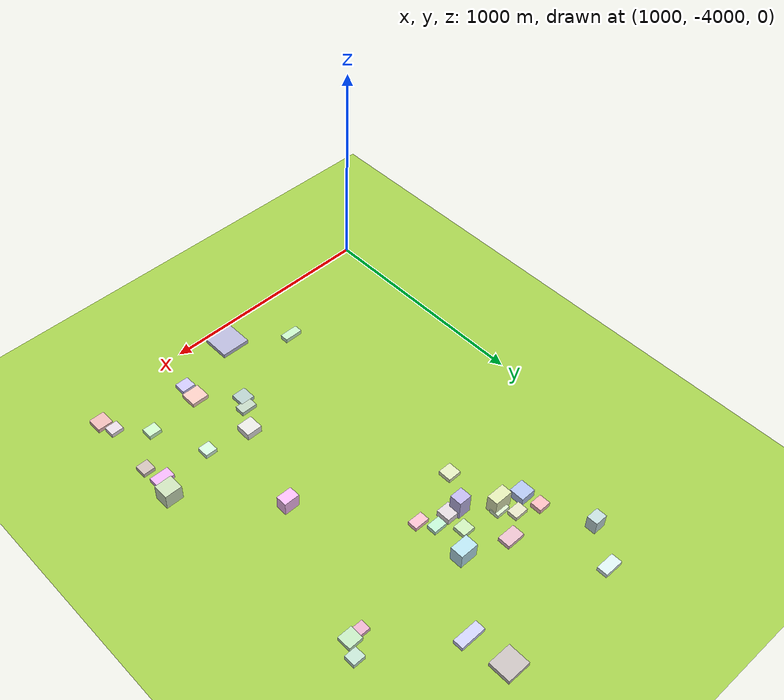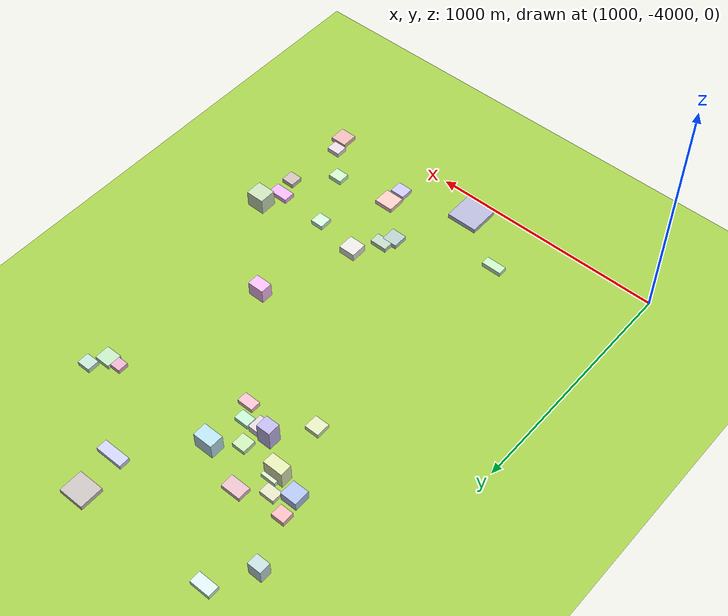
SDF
<sdf version="1.9">
 <world name="city_map">
  <model name="ground_plane">
   <static>1</static>
   <link name="link">
    <collision name="collision">
     <geometry><plane><normal>0 0 1</normal><size>11000 11000</size></plane></geometry>
    </collision>
    <visual name="visual">
     <geometry><plane><normal>0 0 1</normal><size>11000 11000</size></plane></geometry>
     <material>
      <ambient>0.551 0.712 0.210 1</ambient>
      <diffuse>0.651 0.812 0.310 1</diffuse>
      <specular>0.1 0.1 0.05 1</specular>
     </material>
    </visual>
   </link>
  </model>
  <model name="building_984583574">
   <static>1</static>
   <pose>1801.59662404086 -3913.0857329520377 10.0 0 0 0</pose>
   <link name="link">
    <collision name="collision">
     <geometry><box><size>133.23845798524687 126.58439999967186 20</size></box></geometry>
    </collision>
    <visual name="visual">
     <cast_shadows>false</cast_shadows>
     <geometry><box><size>133.23845798524687 126.58439999967186 20</size></box></geometry>
     <material>
      <ambient>0.619 0.622 0.746 1</ambient>
      <diffuse>0.719 0.722 0.846 1</diffuse>
      <specular>0.216 0.217 0.254 1</specular>
      <emissive>0.01 0.01 0.01 1</emissive>
     </material>
    </visual>
   </link>
  </model>
  <model name="building_757155120">
   <static>1</static>
   <pose>2042.8824752467478 -2015.1762467787198 10.0 0 0 0</pose>
   <link name="link">
    <collision name="collision">
     <geometry><box><size>108.82439999955551 98.61750191601611 20</size></box></geometry>
    </collision>
    <visual name="visual">
     <cast_shadows>false</cast_shadows>
     <geometry><box><size>108.82439999955551 98.61750191601611 20</size></box></geometry>
     <material>
      <ambient>0.684 0.657 0.651 1</ambient>
      <diffuse>0.784 0.757 0.751 1</diffuse>
      <specular>0.235 0.227 0.225 1</specular>
      <emissive>0.01 0.01 0.01 1</emissive>
     </material>
    </visual>
   </link>
  </model>
  <model name="building_905388604">
   <static>1</static>
   <pose>2101.1799785935173 -3754.8096324466137 10.0 0 0 0</pose>
   <link name="link">
    <collision name="collision">
     <geometry><box><size>80.5637999997657 74.46120979869195 20</size></box></geometry>
    </collision>
    <visual name="visual">
     <cast_shadows>false</cast_shadows>
     <geometry><box><size>80.5637999997657 74.46120979869195 20</size></box></geometry>
     <material>
      <ambient>0.862 0.701 0.666 1</ambient>
      <diffuse>0.962 0.801 0.766 1</diffuse>
      <specular>0.288 0.240 0.230 1</specular>
      <emissive>0.01 0.01 0.01 1</emissive>
     </material>
    </visual>
   </link>
  </model>
  <model name="building_14091284">
   <static>1</static>
   <pose>2493.5834079759748 -3413.2316545847716 36.39568291889552 0 0 0</pose>
   <link name="link">
    <collision name="collision">
     <geometry><box><size>79.93109999947023 71.48210255128315 72.79136583779103</size></box></geometry>
    </collision>
    <visual name="visual">
     <cast_shadows>false</cast_shadows>
     <geometry><box><size>79.93109999947023 71.48210255128315 72.79136583779103</size></box></geometry>
     <material>
      <ambient>0.700 0.773 0.635 1</ambient>
      <diffuse>0.800 0.873 0.735 1</diffuse>
      <specular>0.240 0.262 0.220 1</specular>
      <emissive>0.01 0.01 0.01 1</emissive>
     </material>
    </visual>
   </link>
  </model>
  <model name="building_813416414">
   <static>1</static>
   <pose>2066.2389783622407 -2188.2709370958605 10.0 0 0 0</pose>
   <link name="link">
    <collision name="collision">
     <geometry><box><size>118.58908814130459 45.45449999960027 20</size></box></geometry>
    </collision>
    <visual name="visual">
     <cast_shadows>false</cast_shadows>
     <geometry><box><size>118.58908814130459 45.45449999960027 20</size></box></geometry>
     <material>
      <ambient>0.711 0.721 0.900 1</ambient>
      <diffuse>0.811 0.821 1.000 1</diffuse>
      <specular>0.243 0.246 0.300 1</specular>
      <emissive>0.01 0.01 0.01 1</emissive>
     </material>
    </visual>
   </link>
  </model>
  <model name="building_610042011">
   <static>1</static>
   <pose>1835.0709310361392 -2438.050033490344 36.14320716174114 0 0 0</pose>
   <link name="link">
    <collision name="collision">
     <geometry><box><size>85.11480000010607 59.25029610578512 72.28641432348228</size></box></geometry>
    </collision>
    <visual name="visual">
     <cast_shadows>false</cast_shadows>
     <geometry><box><size>85.11480000010607 59.25029610578512 72.28641432348228</size></box></geometry>
     <material>
      <ambient>0.623 0.787 0.835 1</ambient>
      <diffuse>0.723 0.887 0.935 1</diffuse>
      <specular>0.217 0.266 0.281 1</specular>
      <emissive>0.01 0.01 0.01 1</emissive>
     </material>
    </visual>
   </link>
  </model>
  <model name="building_415144298">
   <static>1</static>
   <pose>2045.4831247615432 -3460.0418100325505 16.895613754972455 0 0 0</pose>
   <link name="link">
    <collision name="collision">
     <geometry><box><size>71.92196081005667 69.86340000012348 33.79122750994491</size></box></geometry>
    </collision>
    <visual name="visual">
     <cast_shadows>false</cast_shadows>
     <geometry><box><size>71.92196081005667 69.86340000012348 33.79122750994491</size></box></geometry>
     <material>
      <ambient>0.803 0.799 0.787 1</ambient>
      <diffuse>0.903 0.899 0.887 1</diffuse>
      <specular>0.271 0.270 0.266 1</specular>
      <emissive>0.01 0.01 0.01 1</emissive>
     </material>
    </visual>
   </link>
  </model>
  <model name="building_810631705">
   <static>1</static>
   <pose>1640.5882244002505 -2369.477485334747 10.0 0 0 0</pose>
   <link name="link">
    <collision name="collision">
     <geometry><box><size>85.22500455852719 56.06609999978218 20</size></box></geometry>
    </collision>
    <visual name="visual">
     <cast_shadows>false</cast_shadows>
     <geometry><box><size>85.22500455852719 56.06609999978218 20</size></box></geometry>
     <material>
      <ambient>0.808 0.649 0.700 1</ambient>
      <diffuse>0.908 0.749 0.800 1</diffuse>
      <specular>0.272 0.225 0.240 1</specular>
      <emissive>0.01 0.01 0.01 1</emissive>
     </material>
    </visual>
   </link>
  </model>
  <model name="building_251621896">
   <static>1</static>
   <pose>2479.420712799257 -3906.830343730254 10.0 0 0 0</pose>
   <link name="link">
    <collision name="collision">
     <geometry><box><size>69.72502187033729 68.27609999971429 20</size></box></geometry>
    </collision>
    <visual name="visual">
     <cast_shadows>false</cast_shadows>
     <geometry><box><size>69.72502187033729 68.27609999971429 20</size></box></geometry>
     <material>
      <ambient>0.822 0.628 0.620 1</ambient>
      <diffuse>0.922 0.728 0.720 1</diffuse>
      <specular>0.277 0.218 0.216 1</specular>
      <emissive>0.01 0.01 0.01 1</emissive>
     </material>
    </visual>
   </link>
  </model>
  <model name="building_79015618">
   <static>1</static>
   <pose>1459.5037887878752 -2476.6691407266485 20.242902835362955 0 0 0</pose>
   <link name="link">
    <collision name="collision">
     <geometry><box><size>70.47390000015952 67.54220421326987 40.48580567072591</size></box></geometry>
    </collision>
    <visual name="visual">
     <cast_shadows>false</cast_shadows>
     <geometry><box><size>70.47390000015952 67.54220421326987 40.48580567072591</size></box></geometry>
     <material>
      <ambient>0.601 0.669 0.833 1</ambient>
      <diffuse>0.701 0.769 0.933 1</diffuse>
      <specular>0.210 0.231 0.280 1</specular>
      <emissive>0.01 0.01 0.01 1</emissive>
     </material>
    </visual>
   </link>
  </model>
  <model name="building_52306639">
   <static>1</static>
   <pose>2391.3393219125833 -2469.098834006695 10.0 0 0 0</pose>
   <link name="link">
    <collision name="collision">
     <geometry><box><size>67.16610000015066 63.649666229809 20</size></box></geometry>
    </collision>
    <visual name="visual">
     <cast_shadows>false</cast_shadows>
     <geometry><box><size>67.16610000015066 63.649666229809 20</size></box></geometry>
     <material>
      <ambient>0.667 0.810 0.661 1</ambient>
      <diffuse>0.767 0.910 0.761 1</diffuse>
      <specular>0.230 0.273 0.228 1</specular>
      <emissive>0.01 0.01 0.01 1</emissive>
     </material>
    </visual>
   </link>
  </model>
  <model name="building_217709129">
   <static>1</static>
   <pose>2463.4012541892116 -3502.737484863511 10.5 0 0 0</pose>
   <link name="link">
    <collision name="collision">
     <geometry><box><size>85.69200000054167 49.73967263069348 21.0</size></box></geometry>
    </collision>
    <visual name="visual">
     <cast_shadows>false</cast_shadows>
     <geometry><box><size>85.69200000054167 49.73967263069348 21.0</size></box></geometry>
     <material>
      <ambient>0.842 0.614 0.863 1</ambient>
      <diffuse>0.942 0.714 0.963 1</diffuse>
      <specular>0.282 0.214 0.289 1</specular>
      <emissive>0.01 0.01 0.01 1</emissive>
     </material>
    </visual>
   </link>
  </model>
  <model name="building_737040306">
   <static>1</static>
   <pose>1565.0717301397547 -2505.5396137041835 40.491242694363905 0 0 0</pose>
   <link name="link">
    <collision name="collision">
     <geometry><box><size>85.15297994596878 49.761299999453 80.98248538872781</size></box></geometry>
    </collision>
    <visual name="visual">
     <cast_shadows>false</cast_shadows>
     <geometry><box><size>85.15297994596878 49.761299999453 80.98248538872781</size></box></geometry>
     <material>
      <ambient>0.785 0.816 0.612 1</ambient>
      <diffuse>0.885 0.916 0.712 1</diffuse>
      <specular>0.266 0.275 0.213 1</specular>
      <emissive>0.01 0.01 0.01 1</emissive>
     </material>
    </visual>
   </link>
  </model>
  <model name="building_800070766">
   <static>1</static>
   <pose>1461.766735894239 -2032.4796136993255 10.0 0 0 0</pose>
   <link name="link">
    <collision name="collision">
     <geometry><box><size>87.71914227554383 48.0852000003722 20</size></box></geometry>
    </collision>
    <visual name="visual">
     <cast_shadows>false</cast_shadows>
     <geometry><box><size>87.71914227554383 48.0852000003722 20</size></box></geometry>
     <material>
      <ambient>0.763 0.839 0.842 1</ambient>
      <diffuse>0.863 0.939 0.942 1</diffuse>
      <specular>0.259 0.282 0.282 1</specular>
      <emissive>0.01 0.01 0.01 1</emissive>
     </material>
    </visual>
   </link>
  </model>
  <model name="building_109696890">
   <static>1</static>
   <pose>1955.0863617374955 -3612.4122485605008 10.0 0 0 0</pose>
   <link name="link">
    <collision name="collision">
     <geometry><box><size>64.69080000040606 64.38104961609996 20</size></box></geometry>
    </collision>
    <visual name="visual">
     <cast_shadows>false</cast_shadows>
     <geometry><box><size>64.69080000040606 64.38104961609996 20</size></box></geometry>
     <material>
      <ambient>0.620 0.710 0.693 1</ambient>
      <diffuse>0.720 0.810 0.793 1</diffuse>
      <specular>0.216 0.243 0.238 1</specular>
      <emissive>0.01 0.01 0.01 1</emissive>
     </material>
    </visual>
   </link>
  </model>
  <model name="building_515685885">
   <static>1</static>
   <pose>1742.0767276350393 -2607.8509080981535 15.54974932581131 0 0 0</pose>
   <link name="link">
    <collision name="collision">
     <geometry><box><size>63.28664748943462 62.57070000008014 31.09949865162262</size></box></geometry>
    </collision>
    <visual name="visual">
     <cast_shadows>false</cast_shadows>
     <geometry><box><size>63.28664748943462 62.57070000008014 31.09949865162262</size></box></geometry>
     <material>
      <ambient>0.783 0.747 0.764 1</ambient>
      <diffuse>0.883 0.847 0.864 1</diffuse>
      <specular>0.265 0.254 0.259 1</specular>
      <emissive>0.01 0.01 0.01 1</emissive>
     </material>
    </visual>
   </link>
  </model>
  <model name="building_43096482">
   <static>1</static>
   <pose>1593.9989167806223 -2742.9024415031295 10.0 0 0 0</pose>
   <link name="link">
    <collision name="collision">
     <geometry><box><size>61.97129999938511 59.56480256903018 20</size></box></geometry>
    </collision>
    <visual name="visual">
     <cast_shadows>false</cast_shadows>
     <geometry><box><size>61.97129999938511 59.56480256903018 20</size></box></geometry>
     <material>
      <ambient>0.783 0.819 0.650 1</ambient>
      <diffuse>0.883 0.919 0.750 1</diffuse>
      <specular>0.265 0.276 0.225 1</specular>
      <emissive>0.01 0.01 0.01 1</emissive>
     </material>
    </visual>
   </link>
  </model>
  <model name="building_321156671">
   <static>1</static>
   <pose>2173.332227625995 -3065.5977037093962 32.50847927852427 0 0 0</pose>
   <link name="link">
    <collision name="collision">
     <geometry><box><size>71.51763666642672 50.9933999996548 65.01695855704854</size></box></geometry>
    </collision>
    <visual name="visual">
     <cast_shadows>false</cast_shadows>
     <geometry><box><size>71.51763666642672 50.9933999996548 65.01695855704854</size></box></geometry>
     <material>
      <ambient>0.881 0.643 0.861 1</ambient>
      <diffuse>0.981 0.743 0.961 1</diffuse>
      <specular>0.294 0.223 0.288 1</specular>
      <emissive>0.01 0.01 0.01 1</emissive>
     </material>
    </visual>
   </link>
  </model>
  <model name="building_602035633">
   <static>1</static>
   <pose>2098.152483556869 -3829.1449198570176 10.0 0 0 0</pose>
   <link name="link">
    <collision name="collision">
     <geometry><box><size>63.1333784958582 54.82290000023937 20</size></box></geometry>
    </collision>
    <visual name="visual">
     <cast_shadows>false</cast_shadows>
     <geometry><box><size>63.1333784958582 54.82290000023937 20</size></box></geometry>
     <material>
      <ambient>0.708 0.683 0.893 1</ambient>
      <diffuse>0.808 0.783 0.993 1</diffuse>
      <specular>0.242 0.235 0.298 1</specular>
      <emissive>0.01 0.01 0.01 1</emissive>
     </material>
    </visual>
   </link>
  </model>
  <model name="building_954889377">
   <static>1</static>
   <pose>1979.6169980831987 -3562.989011842256 10.0 0 0 0</pose>
   <link name="link">
    <collision name="collision">
     <geometry><box><size>73.75949999990894 46.40123571166833 20</size></box></geometry>
    </collision>
    <visual name="visual">
     <cast_shadows>false</cast_shadows>
     <geometry><box><size>73.75949999990894 46.40123571166833 20</size></box></geometry>
     <material>
      <ambient>0.663 0.741 0.667 1</ambient>
      <diffuse>0.763 0.841 0.767 1</diffuse>
      <specular>0.229 0.252 0.230 1</specular>
      <emissive>0.01 0.01 0.01 1</emissive>
     </material>
    </visual>
   </link>
  </model>
  <model name="building_350135994">
   <static>1</static>
   <pose>1745.0185523560858 -2519.7239199511505 10.0 0 0 0</pose>
   <link name="link">
    <collision name="collision">
     <geometry><box><size>57.6901956943382 57.442499999304175 20</size></box></geometry>
    </collision>
    <visual name="visual">
     <cast_shadows>false</cast_shadows>
     <geometry><box><size>57.6901956943382 57.442499999304175 20</size></box></geometry>
     <material>
      <ambient>0.702 0.826 0.627 1</ambient>
      <diffuse>0.802 0.926 0.727 1</diffuse>
      <specular>0.241 0.278 0.218 1</specular>
      <emissive>0.01 0.01 0.01 1</emissive>
     </material>
    </visual>
   </link>
  </model>
  <model name="building_926315945">
   <static>1</static>
   <pose>1564.6959248696417 -3753.4248210230826 10.0 0 0 0</pose>
   <link name="link">
    <collision name="collision">
     <geometry><box><size>86.0028000002302 38.305324466785834 20</size></box></geometry>
    </collision>
    <visual name="visual">
     <cast_shadows>false</cast_shadows>
     <geometry><box><size>86.0028000002302 38.305324466785834 20</size></box></geometry>
     <material>
      <ambient>0.681 0.850 0.680 1</ambient>
      <diffuse>0.781 0.950 0.780 1</diffuse>
      <specular>0.234 0.285 0.234 1</specular>
      <emissive>0.01 0.01 0.01 1</emissive>
     </material>
    </visual>
   </link>
  </model>
  <model name="building_638783181">
   <static>1</static>
   <pose>1691.6330117971413 -2595.3414788506207 48.15529088084431 0 0 0</pose>
   <link name="link">
    <collision name="collision">
     <geometry><box><size>60.3618000002939 53.91343249928605 96.31058176168862</size></box></geometry>
    </collision>
    <visual name="visual">
     <cast_shadows>false</cast_shadows>
     <geometry><box><size>60.3618000002939 53.91343249928605 96.31058176168862</size></box></geometry>
     <material>
      <ambient>0.653 0.623 0.821 1</ambient>
      <diffuse>0.753 0.723 0.921 1</diffuse>
      <specular>0.226 0.217 0.276 1</specular>
      <emissive>0.01 0.01 0.01 1</emissive>
     </material>
    </visual>
   </link>
  </model>
  <model name="building_936887458">
   <static>1</static>
   <pose>1532.4404861094154 -2433.4521873263725 10.0 0 0 0</pose>
   <link name="link">
    <collision name="collision">
     <geometry><box><size>64.56869999976789 47.329854100382455 20</size></box></geometry>
    </collision>
    <visual name="visual">
     <cast_shadows>false</cast_shadows>
     <geometry><box><size>64.56869999976789 47.329854100382455 20</size></box></geometry>
     <material>
      <ambient>0.792 0.788 0.677 1</ambient>
      <diffuse>0.892 0.888 0.777 1</diffuse>
      <specular>0.268 0.266 0.233 1</specular>
      <emissive>0.01 0.01 0.01 1</emissive>
     </material>
    </visual>
   </link>
  </model>
  <model name="building_52863246">
   <static>1</static>
   <pose>1853.1148772419835 -2661.2264686938856 10.0 0 0 0</pose>
   <link name="link">
    <collision name="collision">
     <geometry><box><size>69.18630000009784 43.80442772579838 20</size></box></geometry>
    </collision>
    <visual name="visual">
     <cast_shadows>false</cast_shadows>
     <geometry><box><size>69.18630000009784 43.80442772579838 20</size></box></geometry>
     <material>
      <ambient>0.898 0.654 0.711 1</ambient>
      <diffuse>0.998 0.754 0.811 1</diffuse>
      <specular>0.299 0.226 0.243 1</specular>
      <emissive>0.01 0.01 0.01 1</emissive>
     </material>
    </visual>
   </link>
  </model>
  <model name="building_317248114">
   <static>1</static>
   <pose>2349.2910037398187 -3726.210932713034 10.0 0 0 0</pose>
   <link name="link">
    <collision name="collision">
     <geometry><box><size>59.69580000039798 50.68140059585015 20</size></box></geometry>
    </collision>
    <visual name="visual">
     <cast_shadows>false</cast_shadows>
     <geometry><box><size>59.69580000039798 50.68140059585015 20</size></box></geometry>
     <material>
      <ambient>0.709 0.897 0.695 1</ambient>
      <diffuse>0.809 0.997 0.795 1</diffuse>
      <specular>0.243 0.299 0.239 1</specular>
      <emissive>0.01 0.01 0.01 1</emissive>
     </material>
    </visual>
   </link>
  </model>
  <model name="building_887345736">
   <static>1</static>
   <pose>2484.2369705260608 -3587.4223963438076 10.0 0 0 0</pose>
   <link name="link">
    <collision name="collision">
     <geometry><box><size>54.56644774516148 54.24570000059248 20</size></box></geometry>
    </collision>
    <visual name="visual">
     <cast_shadows>false</cast_shadows>
     <geometry><box><size>54.56644774516148 54.24570000059248 20</size></box></geometry>
     <material>
      <ambient>0.712 0.651 0.625 1</ambient>
      <diffuse>0.812 0.751 0.725 1</diffuse>
      <specular>0.244 0.225 0.217 1</specular>
      <emissive>0.01 0.01 0.01 1</emissive>
     </material>
    </visual>
   </link>
  </model>
  <model name="building_327466">
   <static>1</static>
   <pose>2240.1801639650666 -3492.8141837119974 10.0 0 0 0</pose>
   <link name="link">
    <collision name="collision">
     <geometry><box><size>54.991272138407595 53.823899999606795 20</size></box></geometry>
    </collision>
    <visual name="visual">
     <cast_shadows>false</cast_shadows>
     <geometry><box><size>54.991272138407595 53.823899999606795 20</size></box></geometry>
     <material>
      <ambient>0.734 0.865 0.770 1</ambient>
      <diffuse>0.834 0.965 0.870 1</diffuse>
      <specular>0.250 0.289 0.261 1</specular>
      <emissive>0.01 0.01 0.01 1</emissive>
     </material>
    </visual>
   </link>
  </model>
  <model name="building_531083751">
   <static>1</static>
   <pose>1577.1584212037112 -2487.9206562751456 10.0 0 0 0</pose>
   <link name="link">
    <collision name="collision">
     <geometry><box><size>65.48808067654035 45.03269999940329 20</size></box></geometry>
    </collision>
    <visual name="visual">
     <cast_shadows>false</cast_shadows>
     <geometry><box><size>65.48808067654035 45.03269999940329 20</size></box></geometry>
     <material>
      <ambient>0.765 0.838 0.706 1</ambient>
      <diffuse>0.865 0.938 0.806 1</diffuse>
      <specular>0.260 0.282 0.242 1</specular>
      <emissive>0.01 0.01 0.01 1</emissive>
     </material>
    </visual>
   </link>
  </model>
  <model name="building_240944260">
   <static>1</static>
   <pose>2345.4419549148442 -2471.1762817610197 10.0 0 0 0</pose>
   <link name="link">
    <collision name="collision">
     <geometry><box><size>65.51220000054059 44.74203844206001 20</size></box></geometry>
    </collision>
    <visual name="visual">
     <cast_shadows>false</cast_shadows>
     <geometry><box><size>65.51220000054059 44.74203844206001 20</size></box></geometry>
     <material>
      <ambient>0.813 0.601 0.708 1</ambient>
      <diffuse>0.913 0.701 0.808 1</diffuse>
      <specular>0.274 0.210 0.242 1</specular>
      <emissive>0.01 0.01 0.01 1</emissive>
     </material>
    </visual>
   </link>
  </model>
  <model name="building_590896798">
   <static>1</static>
   <pose>1442.8471761740911 -2394.2293925236854 11.978557848466242 0 0 0</pose>
   <link name="link">
    <collision name="collision">
     <geometry><box><size>56.77650000019696 51.05284210616668 23.957115696932483</size></box></geometry>
    </collision>
    <visual name="visual">
     <cast_shadows>false</cast_shadows>
     <geometry><box><size>56.77650000019696 51.05284210616668 23.957115696932483</size></box></geometry>
     <material>
      <ambient>0.866 0.638 0.651 1</ambient>
      <diffuse>0.966 0.738 0.751 1</diffuse>
      <specular>0.290 0.221 0.225 1</specular>
      <emissive>0.01 0.01 0.01 1</emissive>
     </material>
    </visual>
   </link>
  </model>
  <model name="building_627534371">
   <static>1</static>
   <pose>2429.509675136416 -2403.9757050630083 10.5 0 0 0</pose>
   <link name="link">
    <collision name="collision">
     <geometry><box><size>56.93189999964687 50.4649928707298 21.0</size></box></geometry>
    </collision>
    <visual name="visual">
     <cast_shadows>false</cast_shadows>
     <geometry><box><size>56.93189999964687 50.4649928707298 21.0</size></box></geometry>
     <material>
      <ambient>0.667 0.788 0.727 1</ambient>
      <diffuse>0.767 0.888 0.827 1</diffuse>
      <specular>0.230 0.267 0.248 1</specular>
      <emissive>0.01 0.01 0.01 1</emissive>
     </material>
    </visual>
   </link>
  </model>
  <model name="building_872377437">
   <static>1</static>
   <pose>2459.1829676313514 -3840.0193849137377 10.0 0 0 0</pose>
   <link name="link">
    <collision name="collision">
     <geometry><box><size>57.59790000033149 49.31042256789477 20</size></box></geometry>
    </collision>
    <visual name="visual">
     <cast_shadows>false</cast_shadows>
     <geometry><box><size>57.59790000033149 49.31042256789477 20</size></box></geometry>
     <material>
      <ambient>0.802 0.755 0.790 1</ambient>
      <diffuse>0.902 0.855 0.890 1</diffuse>
      <specular>0.271 0.257 0.267 1</specular>
      <emissive>0.01 0.01 0.01 1</emissive>
     </material>
    </visual>
   </link>
  </model>
  <model name="building_71889615">
   <static>1</static>
   <pose>1356.6599452395308 -2188.5385462177583 33.263642336586216 0 0 0</pose>
   <link name="link">
    <collision name="collision">
     <geometry><box><size>58.51738877364211 47.88540000040342 66.52728467317243</size></box></geometry>
    </collision>
    <visual name="visual">
     <cast_shadows>false</cast_shadows>
     <geometry><box><size>58.51738877364211 47.88540000040342 66.52728467317243</size></box></geometry>
     <material>
      <ambient>0.670 0.763 0.763 1</ambient>
      <diffuse>0.770 0.863 0.863 1</diffuse>
      <specular>0.231 0.259 0.259 1</specular>
      <emissive>0.01 0.01 0.01 1</emissive>
     </material>
    </visual>
   </link>
  </model>
  <model name="building_729994305">
   <static>1</static>
   <pose>1813.2852540795898 -2599.594420044686 10.0 0 0 0</pose>
   <link name="link">
    <collision name="collision">
     <geometry><box><size>62.59290000033957 44.6148031420279 20</size></box></geometry>
    </collision>
    <visual name="visual">
     <cast_shadows>false</cast_shadows>
     <geometry><box><size>62.59290000033957 44.6148031420279 20</size></box></geometry>
     <material>
      <ambient>0.661 0.850 0.729 1</ambient>
      <diffuse>0.761 0.950 0.829 1</diffuse>
      <specular>0.228 0.285 0.249 1</specular>
      <emissive>0.01 0.01 0.01 1</emissive>
     </material>
    </visual>
   </link>
  </model>
 </world>
</sdf>
